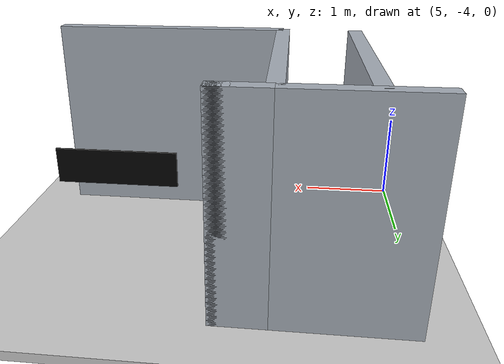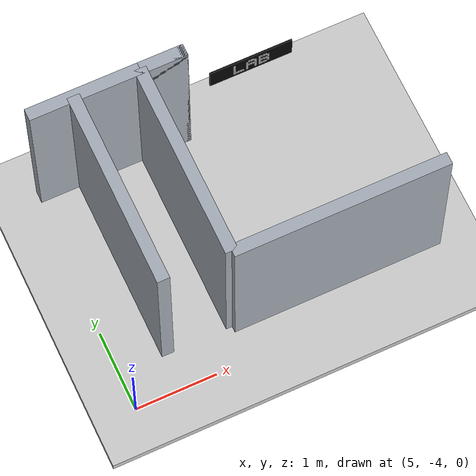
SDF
<sdf version="1.9">
 <world name="default">
  <model name="ground_plane">
   <static>true</static>
   <pose>4.85 0 -0.05 0 0 0</pose>
   <link name="body">
    <collision name="collision"><geometry><box><size>13.7 12 0.1</size></box></geometry></collision>
    <visual name="visual">
     <geometry><box><size>13.7 12 0.1</size></box></geometry>
     <material><ambient>0.8 0.8 0.8 1</ambient><diffuse>0.8 0.8 0.8 1</diffuse></material>
    </visual>
   </link>
  </model>
  <model name="room_-1_1_1">
   <static>true</static>
   <pose>5.6 -2.3499999999999996 1.1 0 0 0</pose>
   <link name="body">
    <collision name="collision"><geometry><box><size>0.15 2.4 2.2</size></box></geometry></collision>
    <visual name="visual">
     <geometry><box><size>0.15 2.4 2.2</size></box></geometry>
     <material><ambient>0.65 0.68 0.72 1</ambient><diffuse>0.65 0.68 0.72 1</diffuse></material>
    </visual>
   </link>
  </model>
  <model name="hall_-1_2">
   <static>true</static>
   <pose>6.0 -1.15 1.1 0 0 0</pose>
   <link name="body">
    <collision name="collision">
     <geometry><box><size>1.9000000000000004 0.15 2.2</size></box></geometry>
    </collision>
    <visual name="visual">
     <geometry><box><size>1.9000000000000004 0.15 2.2</size></box></geometry>
     <material><ambient>0.65 0.68 0.72 1</ambient><diffuse>0.65 0.68 0.72 1</diffuse></material>
    </visual>
   </link>
  </model>
  <model name="room_-1_2_-1">
   <static>true</static>
   <pose>6.4 -2.3499999999999996 1.1 0 0 0</pose>
   <link name="body">
    <collision name="collision"><geometry><box><size>0.15 2.4 2.2</size></box></geometry></collision>
    <visual name="visual">
     <geometry><box><size>0.15 2.4 2.2</size></box></geometry>
     <material><ambient>0.65 0.68 0.72 1</ambient><diffuse>0.65 0.68 0.72 1</diffuse></material>
    </visual>
   </link>
  </model>
  <model name="room_end_-1_2">
   <static>true</static>
   <pose>7.7 -3.55 1.1 0 0 0</pose>
   <link name="body">
    <collision name="collision"><geometry><box><size>2.6 0.15 2.2</size></box></geometry></collision>
    <visual name="visual">
     <geometry><box><size>2.6 0.15 2.2</size></box></geometry>
     <material><ambient>0.65 0.68 0.72 1</ambient><diffuse>0.65 0.68 0.72 1</diffuse></material>
    </visual>
   </link>
  </model>
  <model name="jamb_-1_2_-1">
   <static>true</static>
   <pose>6.675000000000001 -1.15 1.1 0 0 0</pose>
   <link name="body">
    <collision name="collision"><geometry><box><size>0.55 0.15 2.2</size></box></geometry></collision>
    <visual name="visual">
     <geometry><box><size>0.55 0.15 2.2</size></box></geometry>
     <material><ambient>0.65 0.68 0.72 1</ambient><diffuse>0.65 0.68 0.72 1</diffuse></material>
    </visual>
   </link>
  </model>
  <model name="readable_r3geo_base_r006_right_2_entrance_room">
   <static>true</static>
   <pose>7.7 -1.25 1.43 0 0 0</pose>
   <link name="lettering">
    <visual name="backboard">
     <geometry><box><size>1.02 0.018 0.3</size></box></geometry>
     <material>
      <ambient>.015 .015 .015 1</ambient>
      <diffuse>.015 .015 .015 1</diffuse>
      <emissive>.015 .015 .015 1</emissive>
     </material>
     <cast_shadows>false</cast_shadows>
    </visual>
    <visual name="letter_0_0_0">
     <pose>-0.208 -0.014 0.078 0 0 0</pose>
     <geometry><box><size>0.024439999999999996 0.008 0.024439999999999996</size></box></geometry>
     <material>
      <ambient>.96 .96 .96 1</ambient>
      <diffuse>.96 .96 .96 1</diffuse>
      <emissive>.96 .96 .96 1</emissive>
     </material>
     <cast_shadows>false</cast_shadows>
    </visual>
    <visual name="letter_0_1_0">
     <pose>-0.208 -0.014 0.052 0 0 0</pose>
     <geometry><box><size>0.024439999999999996 0.008 0.024439999999999996</size></box></geometry>
     <material>
      <ambient>.96 .96 .96 1</ambient>
      <diffuse>.96 .96 .96 1</diffuse>
      <emissive>.96 .96 .96 1</emissive>
     </material>
     <cast_shadows>false</cast_shadows>
    </visual>
    <visual name="letter_0_2_0">
     <pose>-0.208 -0.014 0.026 0 0 0</pose>
     <geometry><box><size>0.024439999999999996 0.008 0.024439999999999996</size></box></geometry>
     <material>
      <ambient>.96 .96 .96 1</ambient>
      <diffuse>.96 .96 .96 1</diffuse>
      <emissive>.96 .96 .96 1</emissive>
     </material>
     <cast_shadows>false</cast_shadows>
    </visual>
    <visual name="letter_0_3_0">
     <pose>-0.208 -0.014 0 0 0 0</pose>
     <geometry><box><size>0.024439999999999996 0.008 0.024439999999999996</size></box></geometry>
     <material>
      <ambient>.96 .96 .96 1</ambient>
      <diffuse>.96 .96 .96 1</diffuse>
      <emissive>.96 .96 .96 1</emissive>
     </material>
     <cast_shadows>false</cast_shadows>
    </visual>
    <visual name="letter_0_4_0">
     <pose>-0.208 -0.014 -0.026 0 0 0</pose>
     <geometry><box><size>0.024439999999999996 0.008 0.024439999999999996</size></box></geometry>
     <material>
      <ambient>.96 .96 .96 1</ambient>
      <diffuse>.96 .96 .96 1</diffuse>
      <emissive>.96 .96 .96 1</emissive>
     </material>
     <cast_shadows>false</cast_shadows>
    </visual>
    <visual name="letter_0_5_0">
     <pose>-0.208 -0.014 -0.052 0 0 0</pose>
     <geometry><box><size>0.024439999999999996 0.008 0.024439999999999996</size></box></geometry>
     <material>
      <ambient>.96 .96 .96 1</ambient>
      <diffuse>.96 .96 .96 1</diffuse>
      <emissive>.96 .96 .96 1</emissive>
     </material>
     <cast_shadows>false</cast_shadows>
    </visual>
    <visual name="letter_0_6_0">
     <pose>-0.208 -0.014 -0.078 0 0 0</pose>
     <geometry><box><size>0.024439999999999996 0.008 0.024439999999999996</size></box></geometry>
     <material>
      <ambient>.96 .96 .96 1</ambient>
      <diffuse>.96 .96 .96 1</diffuse>
      <emissive>.96 .96 .96 1</emissive>
     </material>
     <cast_shadows>false</cast_shadows>
    </visual>
    <visual name="letter_0_6_1">
     <pose>-0.182 -0.014 -0.078 0 0 0</pose>
     <geometry><box><size>0.024439999999999996 0.008 0.024439999999999996</size></box></geometry>
     <material>
      <ambient>.96 .96 .96 1</ambient>
      <diffuse>.96 .96 .96 1</diffuse>
      <emissive>.96 .96 .96 1</emissive>
     </material>
     <cast_shadows>false</cast_shadows>
    </visual>
    <visual name="letter_0_6_2">
     <pose>-0.156 -0.014 -0.078 0 0 0</pose>
     <geometry><box><size>0.024439999999999996 0.008 0.024439999999999996</size></box></geometry>
     <material>
      <ambient>.96 .96 .96 1</ambient>
      <diffuse>.96 .96 .96 1</diffuse>
      <emissive>.96 .96 .96 1</emissive>
     </material>
     <cast_shadows>false</cast_shadows>
    </visual>
    <visual name="letter_0_6_3">
     <pose>-0.13 -0.014 -0.078 0 0 0</pose>
     <geometry><box><size>0.024439999999999996 0.008 0.024439999999999996</size></box></geometry>
     <material>
      <ambient>.96 .96 .96 1</ambient>
      <diffuse>.96 .96 .96 1</diffuse>
      <emissive>.96 .96 .96 1</emissive>
     </material>
     <cast_shadows>false</cast_shadows>
    </visual>
    <visual name="letter_0_6_4">
     <pose>-0.104 -0.014 -0.078 0 0 0</pose>
     <geometry><box><size>0.024439999999999996 0.008 0.024439999999999996</size></box></geometry>
     <material>
      <ambient>.96 .96 .96 1</ambient>
      <diffuse>.96 .96 .96 1</diffuse>
      <emissive>.96 .96 .96 1</emissive>
     </material>
     <cast_shadows>false</cast_shadows>
    </visual>
    <visual name="letter_1_0_1">
     <pose>-0.026 -0.014 0.078 0 0 0</pose>
     <geometry><box><size>0.024439999999999996 0.008 0.024439999999999996</size></box></geometry>
     <material>
      <ambient>.96 .96 .96 1</ambient>
      <diffuse>.96 .96 .96 1</diffuse>
      <emissive>.96 .96 .96 1</emissive>
     </material>
     <cast_shadows>false</cast_shadows>
    </visual>
    <visual name="letter_1_0_2">
     <pose>0 -0.014 0.078 0 0 0</pose>
     <geometry><box><size>0.024439999999999996 0.008 0.024439999999999996</size></box></geometry>
     <material>
      <ambient>.96 .96 .96 1</ambient>
      <diffuse>.96 .96 .96 1</diffuse>
      <emissive>.96 .96 .96 1</emissive>
     </material>
     <cast_shadows>false</cast_shadows>
    </visual>
    <visual name="letter_1_0_3">
     <pose>0.026 -0.014 0.078 0 0 0</pose>
     <geometry><box><size>0.024439999999999996 0.008 0.024439999999999996</size></box></geometry>
     <material>
      <ambient>.96 .96 .96 1</ambient>
      <diffuse>.96 .96 .96 1</diffuse>
      <emissive>.96 .96 .96 1</emissive>
     </material>
     <cast_shadows>false</cast_shadows>
    </visual>
    <visual name="letter_1_1_0">
     <pose>-0.052 -0.014 0.052 0 0 0</pose>
     <geometry><box><size>0.024439999999999996 0.008 0.024439999999999996</size></box></geometry>
     <material>
      <ambient>.96 .96 .96 1</ambient>
      <diffuse>.96 .96 .96 1</diffuse>
      <emissive>.96 .96 .96 1</emissive>
     </material>
     <cast_shadows>false</cast_shadows>
    </visual>
    <visual name="letter_1_1_4">
     <pose>0.052 -0.014 0.052 0 0 0</pose>
     <geometry><box><size>0.024439999999999996 0.008 0.024439999999999996</size></box></geometry>
     <material>
      <ambient>.96 .96 .96 1</ambient>
      <diffuse>.96 .96 .96 1</diffuse>
      <emissive>.96 .96 .96 1</emissive>
     </material>
     <cast_shadows>false</cast_shadows>
    </visual>
    <visual name="letter_1_2_0">
     <pose>-0.052 -0.014 0.026 0 0 0</pose>
     <geometry><box><size>0.024439999999999996 0.008 0.024439999999999996</size></box></geometry>
     <material>
      <ambient>.96 .96 .96 1</ambient>
      <diffuse>.96 .96 .96 1</diffuse>
      <emissive>.96 .96 .96 1</emissive>
     </material>
     <cast_shadows>false</cast_shadows>
    </visual>
    <visual name="letter_1_2_4">
     <pose>0.052 -0.014 0.026 0 0 0</pose>
     <geometry><box><size>0.024439999999999996 0.008 0.024439999999999996</size></box></geometry>
     <material>
      <ambient>.96 .96 .96 1</ambient>
      <diffuse>.96 .96 .96 1</diffuse>
      <emissive>.96 .96 .96 1</emissive>
     </material>
     <cast_shadows>false</cast_shadows>
    </visual>
    <visual name="letter_1_3_0">
     <pose>-0.052 -0.014 0 0 0 0</pose>
     <geometry><box><size>0.024439999999999996 0.008 0.024439999999999996</size></box></geometry>
     <material>
      <ambient>.96 .96 .96 1</ambient>
      <diffuse>.96 .96 .96 1</diffuse>
      <emissive>.96 .96 .96 1</emissive>
     </material>
     <cast_shadows>false</cast_shadows>
    </visual>
    <visual name="letter_1_3_1">
     <pose>-0.026 -0.014 0 0 0 0</pose>
     <geometry><box><size>0.024439999999999996 0.008 0.024439999999999996</size></box></geometry>
     <material>
      <ambient>.96 .96 .96 1</ambient>
      <diffuse>.96 .96 .96 1</diffuse>
      <emissive>.96 .96 .96 1</emissive>
     </material>
     <cast_shadows>false</cast_shadows>
    </visual>
    <visual name="letter_1_3_2">
     <pose>0 -0.014 0 0 0 0</pose>
     <geometry><box><size>0.024439999999999996 0.008 0.024439999999999996</size></box></geometry>
     <material>
      <ambient>.96 .96 .96 1</ambient>
      <diffuse>.96 .96 .96 1</diffuse>
      <emissive>.96 .96 .96 1</emissive>
     </material>
     <cast_shadows>false</cast_shadows>
    </visual>
    <visual name="letter_1_3_3">
     <pose>0.026 -0.014 0 0 0 0</pose>
     <geometry><box><size>0.024439999999999996 0.008 0.024439999999999996</size></box></geometry>
     <material>
      <ambient>.96 .96 .96 1</ambient>
      <diffuse>.96 .96 .96 1</diffuse>
      <emissive>.96 .96 .96 1</emissive>
     </material>
     <cast_shadows>false</cast_shadows>
    </visual>
    <visual name="letter_1_3_4">
     <pose>0.052 -0.014 0 0 0 0</pose>
     <geometry><box><size>0.024439999999999996 0.008 0.024439999999999996</size></box></geometry>
     <material>
      <ambient>.96 .96 .96 1</ambient>
      <diffuse>.96 .96 .96 1</diffuse>
      <emissive>.96 .96 .96 1</emissive>
     </material>
     <cast_shadows>false</cast_shadows>
    </visual>
    <visual name="letter_1_4_0">
     <pose>-0.052 -0.014 -0.026 0 0 0</pose>
     <geometry><box><size>0.024439999999999996 0.008 0.024439999999999996</size></box></geometry>
     <material>
      <ambient>.96 .96 .96 1</ambient>
      <diffuse>.96 .96 .96 1</diffuse>
      <emissive>.96 .96 .96 1</emissive>
     </material>
     <cast_shadows>false</cast_shadows>
    </visual>
    <visual name="letter_1_4_4">
     <pose>0.052 -0.014 -0.026 0 0 0</pose>
     <geometry><box><size>0.024439999999999996 0.008 0.024439999999999996</size></box></geometry>
     <material>
      <ambient>.96 .96 .96 1</ambient>
      <diffuse>.96 .96 .96 1</diffuse>
      <emissive>.96 .96 .96 1</emissive>
     </material>
     <cast_shadows>false</cast_shadows>
    </visual>
    <visual name="letter_1_5_0">
     <pose>-0.052 -0.014 -0.052 0 0 0</pose>
     <geometry><box><size>0.024439999999999996 0.008 0.024439999999999996</size></box></geometry>
     <material>
      <ambient>.96 .96 .96 1</ambient>
      <diffuse>.96 .96 .96 1</diffuse>
      <emissive>.96 .96 .96 1</emissive>
     </material>
     <cast_shadows>false</cast_shadows>
    </visual>
    <visual name="letter_1_5_4">
     <pose>0.052 -0.014 -0.052 0 0 0</pose>
     <geometry><box><size>0.024439999999999996 0.008 0.024439999999999996</size></box></geometry>
     <material>
      <ambient>.96 .96 .96 1</ambient>
      <diffuse>.96 .96 .96 1</diffuse>
      <emissive>.96 .96 .96 1</emissive>
     </material>
     <cast_shadows>false</cast_shadows>
    </visual>
    <visual name="letter_1_6_0">
     <pose>-0.052 -0.014 -0.078 0 0 0</pose>
     <geometry><box><size>0.024439999999999996 0.008 0.024439999999999996</size></box></geometry>
     <material>
      <ambient>.96 .96 .96 1</ambient>
      <diffuse>.96 .96 .96 1</diffuse>
      <emissive>.96 .96 .96 1</emissive>
     </material>
     <cast_shadows>false</cast_shadows>
    </visual>
    <visual name="letter_1_6_4">
     <pose>0.052 -0.014 -0.078 0 0 0</pose>
     <geometry><box><size>0.024439999999999996 0.008 0.024439999999999996</size></box></geometry>
     <material>
      <ambient>.96 .96 .96 1</ambient>
      <diffuse>.96 .96 .96 1</diffuse>
      <emissive>.96 .96 .96 1</emissive>
     </material>
     <cast_shadows>false</cast_shadows>
    </visual>
    <visual name="letter_2_0_0">
     <pose>0.104 -0.014 0.078 0 0 0</pose>
     <geometry><box><size>0.024439999999999996 0.008 0.024439999999999996</size></box></geometry>
     <material>
      <ambient>.96 .96 .96 1</ambient>
      <diffuse>.96 .96 .96 1</diffuse>
      <emissive>.96 .96 .96 1</emissive>
     </material>
     <cast_shadows>false</cast_shadows>
    </visual>
    <visual name="letter_2_0_1">
     <pose>0.13 -0.014 0.078 0 0 0</pose>
     <geometry><box><size>0.024439999999999996 0.008 0.024439999999999996</size></box></geometry>
     <material>
      <ambient>.96 .96 .96 1</ambient>
      <diffuse>.96 .96 .96 1</diffuse>
      <emissive>.96 .96 .96 1</emissive>
     </material>
     <cast_shadows>false</cast_shadows>
    </visual>
    <visual name="letter_2_0_2">
     <pose>0.156 -0.014 0.078 0 0 0</pose>
     <geometry><box><size>0.024439999999999996 0.008 0.024439999999999996</size></box></geometry>
     <material>
      <ambient>.96 .96 .96 1</ambient>
      <diffuse>.96 .96 .96 1</diffuse>
      <emissive>.96 .96 .96 1</emissive>
     </material>
     <cast_shadows>false</cast_shadows>
    </visual>
    <visual name="letter_2_0_3">
     <pose>0.182 -0.014 0.078 0 0 0</pose>
     <geometry><box><size>0.024439999999999996 0.008 0.024439999999999996</size></box></geometry>
     <material>
      <ambient>.96 .96 .96 1</ambient>
      <diffuse>.96 .96 .96 1</diffuse>
      <emissive>.96 .96 .96 1</emissive>
     </material>
     <cast_shadows>false</cast_shadows>
    </visual>
    <visual name="letter_2_1_0">
     <pose>0.104 -0.014 0.052 0 0 0</pose>
     <geometry><box><size>0.024439999999999996 0.008 0.024439999999999996</size></box></geometry>
     <material>
      <ambient>.96 .96 .96 1</ambient>
      <diffuse>.96 .96 .96 1</diffuse>
      <emissive>.96 .96 .96 1</emissive>
     </material>
     <cast_shadows>false</cast_shadows>
    </visual>
    <visual name="letter_2_1_4">
     <pose>0.208 -0.014 0.052 0 0 0</pose>
     <geometry><box><size>0.024439999999999996 0.008 0.024439999999999996</size></box></geometry>
     <material>
      <ambient>.96 .96 .96 1</ambient>
      <diffuse>.96 .96 .96 1</diffuse>
      <emissive>.96 .96 .96 1</emissive>
     </material>
     <cast_shadows>false</cast_shadows>
    </visual>
    <visual name="letter_2_2_0">
     <pose>0.104 -0.014 0.026 0 0 0</pose>
     <geometry><box><size>0.024439999999999996 0.008 0.024439999999999996</size></box></geometry>
     <material>
      <ambient>.96 .96 .96 1</ambient>
      <diffuse>.96 .96 .96 1</diffuse>
      <emissive>.96 .96 .96 1</emissive>
     </material>
     <cast_shadows>false</cast_shadows>
    </visual>
    <visual name="letter_2_2_4">
     <pose>0.208 -0.014 0.026 0 0 0</pose>
     <geometry><box><size>0.024439999999999996 0.008 0.024439999999999996</size></box></geometry>
     <material>
      <ambient>.96 .96 .96 1</ambient>
      <diffuse>.96 .96 .96 1</diffuse>
      <emissive>.96 .96 .96 1</emissive>
     </material>
     <cast_shadows>false</cast_shadows>
    </visual>
    <visual name="letter_2_3_0">
     <pose>0.104 -0.014 0 0 0 0</pose>
     <geometry><box><size>0.024439999999999996 0.008 0.024439999999999996</size></box></geometry>
     <material>
      <ambient>.96 .96 .96 1</ambient>
      <diffuse>.96 .96 .96 1</diffuse>
      <emissive>.96 .96 .96 1</emissive>
     </material>
     <cast_shadows>false</cast_shadows>
    </visual>
    <visual name="letter_2_3_1">
     <pose>0.13 -0.014 0 0 0 0</pose>
     <geometry><box><size>0.024439999999999996 0.008 0.024439999999999996</size></box></geometry>
     <material>
      <ambient>.96 .96 .96 1</ambient>
      <diffuse>.96 .96 .96 1</diffuse>
      <emissive>.96 .96 .96 1</emissive>
     </material>
     <cast_shadows>false</cast_shadows>
    </visual>
    <visual name="letter_2_3_2">
     <pose>0.156 -0.014 0 0 0 0</pose>
     <geometry><box><size>0.024439999999999996 0.008 0.024439999999999996</size></box></geometry>
     <material>
      <ambient>.96 .96 .96 1</ambient>
      <diffuse>.96 .96 .96 1</diffuse>
      <emissive>.96 .96 .96 1</emissive>
     </material>
     <cast_shadows>false</cast_shadows>
    </visual>
    <visual name="letter_2_3_3">
     <pose>0.182 -0.014 0 0 0 0</pose>
     <geometry><box><size>0.024439999999999996 0.008 0.024439999999999996</size></box></geometry>
     <material>
      <ambient>.96 .96 .96 1</ambient>
      <diffuse>.96 .96 .96 1</diffuse>
      <emissive>.96 .96 .96 1</emissive>
     </material>
     <cast_shadows>false</cast_shadows>
    </visual>
    <visual name="letter_2_4_0">
     <pose>0.104 -0.014 -0.026 0 0 0</pose>
     <geometry><box><size>0.024439999999999996 0.008 0.024439999999999996</size></box></geometry>
     <material>
      <ambient>.96 .96 .96 1</ambient>
      <diffuse>.96 .96 .96 1</diffuse>
      <emissive>.96 .96 .96 1</emissive>
     </material>
     <cast_shadows>false</cast_shadows>
    </visual>
    <visual name="letter_2_4_4">
     <pose>0.208 -0.014 -0.026 0 0 0</pose>
     <geometry><box><size>0.024439999999999996 0.008 0.024439999999999996</size></box></geometry>
     <material>
      <ambient>.96 .96 .96 1</ambient>
      <diffuse>.96 .96 .96 1</diffuse>
      <emissive>.96 .96 .96 1</emissive>
     </material>
     <cast_shadows>false</cast_shadows>
    </visual>
    <visual name="letter_2_5_0">
     <pose>0.104 -0.014 -0.052 0 0 0</pose>
     <geometry><box><size>0.024439999999999996 0.008 0.024439999999999996</size></box></geometry>
     <material>
      <ambient>.96 .96 .96 1</ambient>
      <diffuse>.96 .96 .96 1</diffuse>
      <emissive>.96 .96 .96 1</emissive>
     </material>
     <cast_shadows>false</cast_shadows>
    </visual>
    <visual name="letter_2_5_4">
     <pose>0.208 -0.014 -0.052 0 0 0</pose>
     <geometry><box><size>0.024439999999999996 0.008 0.024439999999999996</size></box></geometry>
     <material>
      <ambient>.96 .96 .96 1</ambient>
      <diffuse>.96 .96 .96 1</diffuse>
      <emissive>.96 .96 .96 1</emissive>
     </material>
     <cast_shadows>false</cast_shadows>
    </visual>
    <visual name="letter_2_6_0">
     <pose>0.104 -0.014 -0.078 0 0 0</pose>
     <geometry><box><size>0.024439999999999996 0.008 0.024439999999999996</size></box></geometry>
     <material>
      <ambient>.96 .96 .96 1</ambient>
      <diffuse>.96 .96 .96 1</diffuse>
      <emissive>.96 .96 .96 1</emissive>
     </material>
     <cast_shadows>false</cast_shadows>
    </visual>
    <visual name="letter_2_6_1">
     <pose>0.13 -0.014 -0.078 0 0 0</pose>
     <geometry><box><size>0.024439999999999996 0.008 0.024439999999999996</size></box></geometry>
     <material>
      <ambient>.96 .96 .96 1</ambient>
      <diffuse>.96 .96 .96 1</diffuse>
      <emissive>.96 .96 .96 1</emissive>
     </material>
     <cast_shadows>false</cast_shadows>
    </visual>
    <visual name="letter_2_6_2">
     <pose>0.156 -0.014 -0.078 0 0 0</pose>
     <geometry><box><size>0.024439999999999996 0.008 0.024439999999999996</size></box></geometry>
     <material>
      <ambient>.96 .96 .96 1</ambient>
      <diffuse>.96 .96 .96 1</diffuse>
      <emissive>.96 .96 .96 1</emissive>
     </material>
     <cast_shadows>false</cast_shadows>
    </visual>
    <visual name="letter_2_6_3">
     <pose>0.182 -0.014 -0.078 0 0 0</pose>
     <geometry><box><size>0.024439999999999996 0.008 0.024439999999999996</size></box></geometry>
     <material>
      <ambient>.96 .96 .96 1</ambient>
      <diffuse>.96 .96 .96 1</diffuse>
      <emissive>.96 .96 .96 1</emissive>
     </material>
     <cast_shadows>false</cast_shadows>
    </visual>
   </link>
  </model>
 </world>
</sdf>
